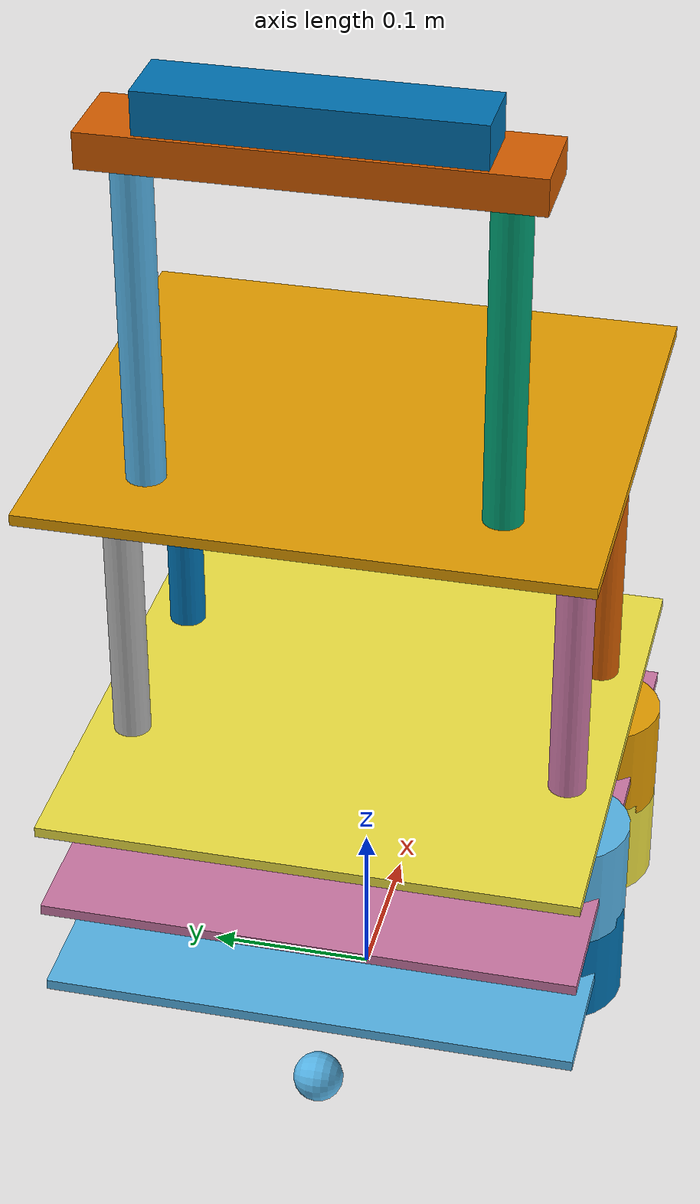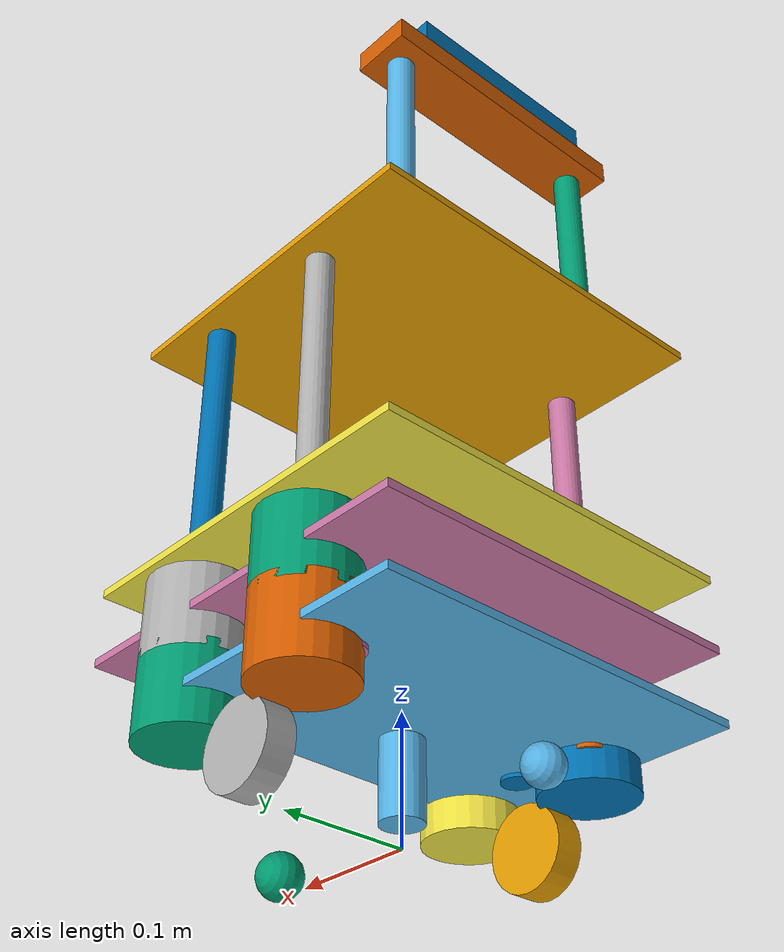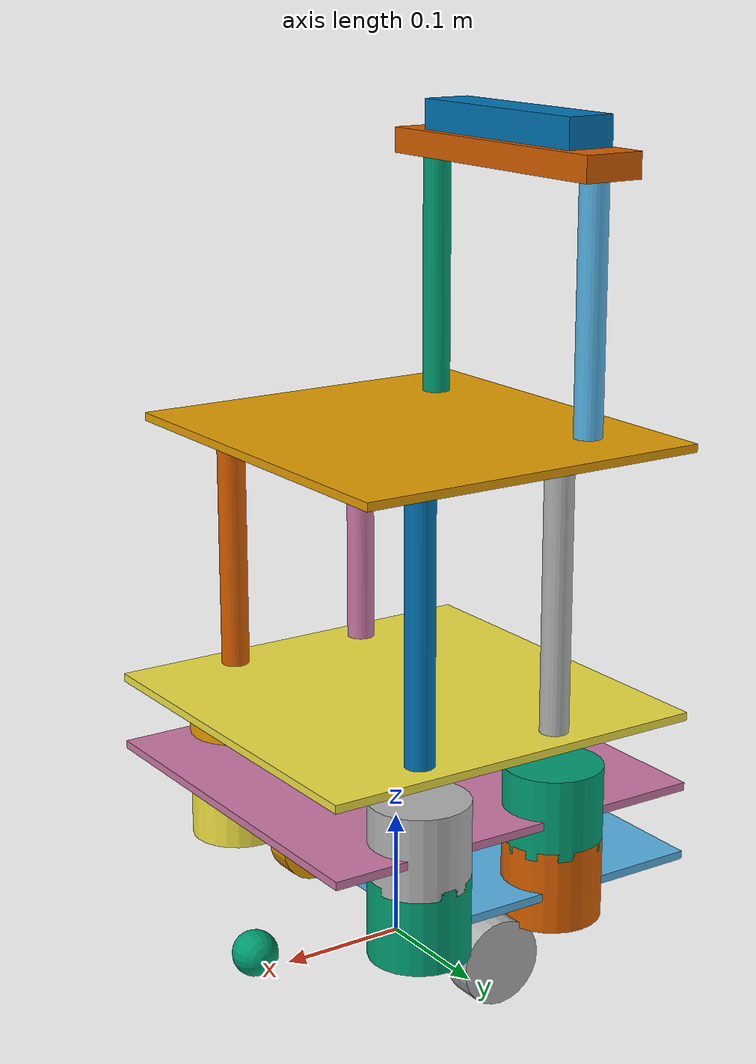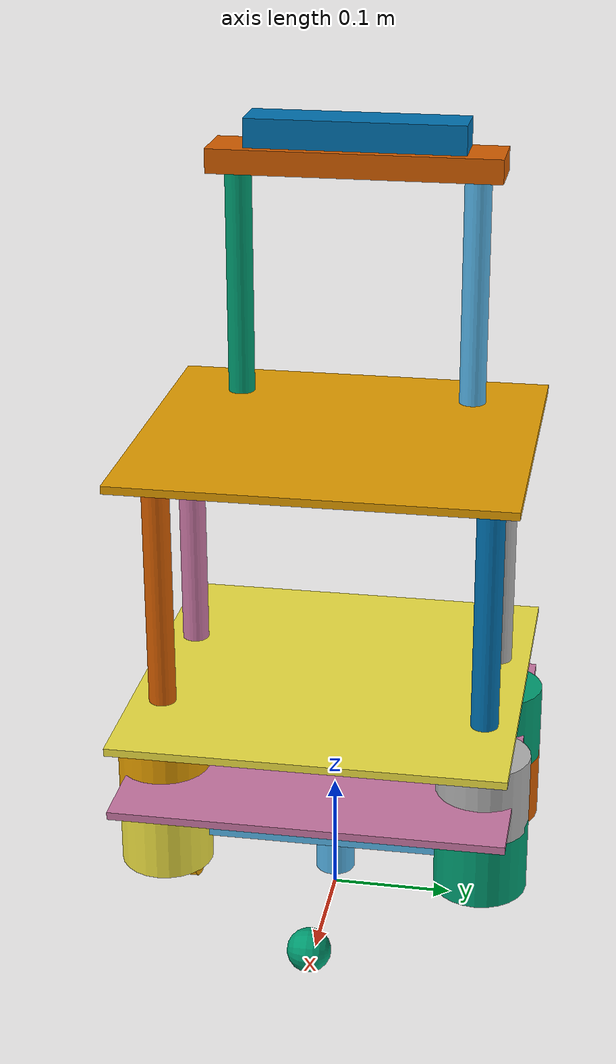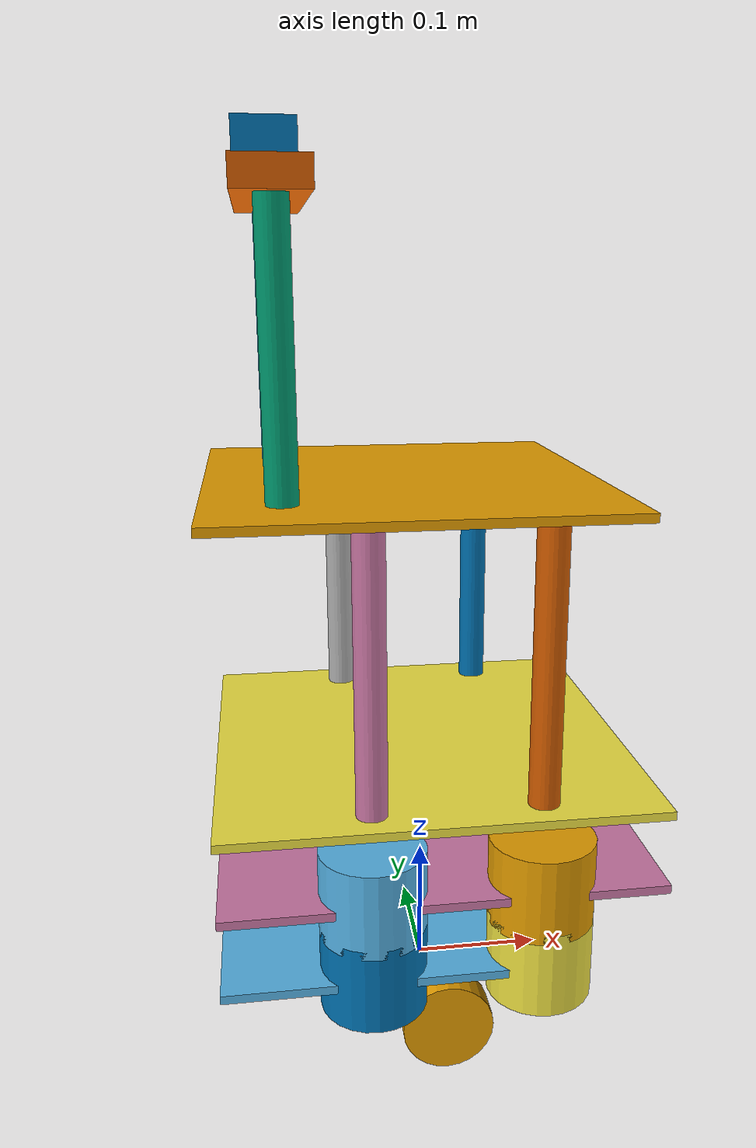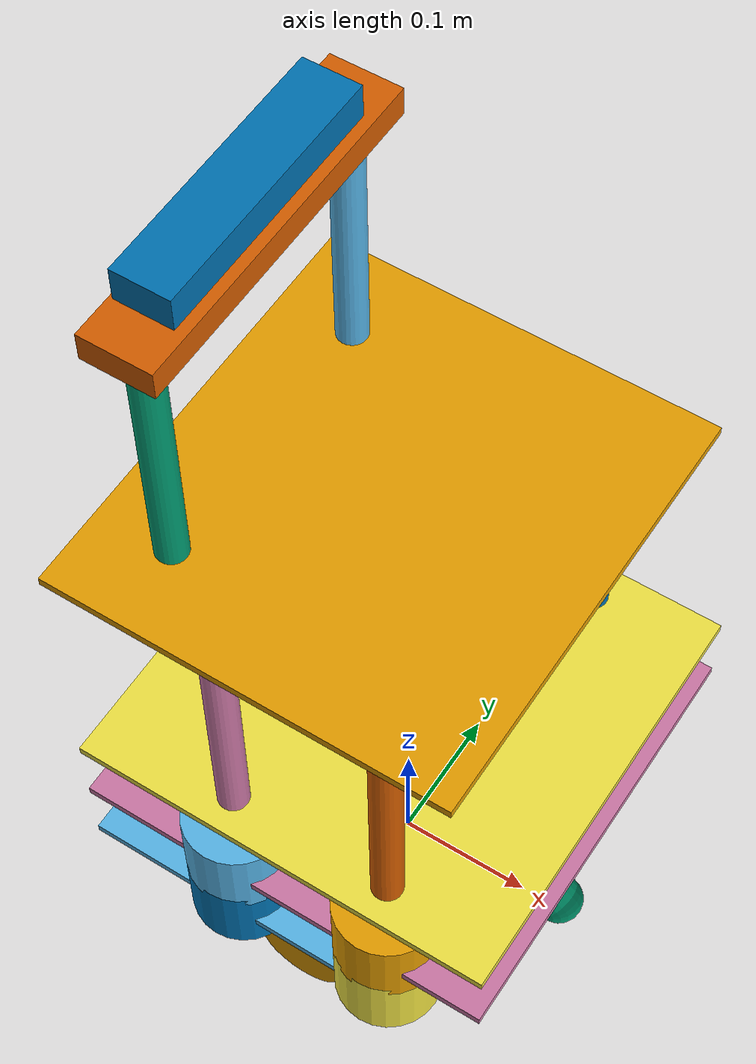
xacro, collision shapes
<?xml version="1.0"?>

<robot name="turtlebot"
    xmlns:sensor="http://playerstage.sourceforge.net/gazebo/xmlschema/#sensor"
    xmlns:controller="http://playerstage.sourceforge.net/gazebo/xmlschema/#controller"
    xmlns:interface="http://playerstage.sourceforge.net/gazebo/xmlschema/#interface">

    <!-- Included URDF Files -->
    <include filename="$(find turtlebot_xtion_top_description)/urdf/turtlebot.xacro" />

    <turtlebot />
</robot>

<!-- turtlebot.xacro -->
<robot>
  <include filename="$(find turtlebot_xtion_top_description)/urdf/turtlebot_hardware.xacro" />
  <include filename="$(find turtlebot_xtion_top_description)/urdf/gazebo.urdf.xacro"/>
  <include filename="$(find turtlebot_xtion_top_description)/urdf/turtlebot_calibration.xacro" />

  <material name="Green">
    <color rgba="0.0 0.8 0.0 1.0"/>
  </material>

  <property name="M_PI" value="3.14159"/>
  <property name="SCALE" value="0.0254"/>
  <property name="base_x" value="0.33" />
  <property name="base_y" value="0.33" />

  <macro name="turtlebot">
  <!-- base_footprint is a fictitious link(frame) that is on the ground right below base_link origin, navigation stack depends on this frame -->

  <link name="base_footprint">
    <inertial>
      <mass value="0.0001" />
      <origin xyz="0 0 0" />
      <inertia ixx="0.0001" ixy="0.0" ixz="0.0"
              iyy="0.0001" iyz="0.0"
              izz="0.0001" />
    </inertial>

    <visual>
      <origin xyz="0 0 0" rpy="0 0 0" />
      <geometry>
        <box size="0.001 0.001 0.001" />
      </geometry>
      <material name="Green" />
    </visual>

    <collision>
      <origin xyz="0 0 0.017" rpy="0 0 0" />
      <geometry>
       <box size="0.001 0.001 0.001" />
      </geometry>
    </collision>
  </link>

  <link name="base_link">
    <inertial>
      <mass value="2" />
      <origin xyz="0 0 0.0" />
      <inertia ixx="0.01" ixy="0.0" ixz="0.0"
        iyy="0.01" iyz="0.0" izz="0.5" />
    </inertial>

    <visual>
      <origin xyz=" 0 0 0.0308" rpy="0 0 0" />
      <geometry>
        <mesh filename="package://turtlebot_xtion_top_description/meshes/create_body.dae"/>
      </geometry>
    </visual>

    <collision>
      <origin xyz="0.0 0.0 0.0308" rpy="0 0 0" />
      <geometry>
        <cylinder length="0.0611632" radius="0.016495"/>
      </geometry>
    </collision>
  </link>

  <link name="wall_sensor_link">
    <inertial>
      <mass value="0.01" />
      <origin xyz="0 0 0"/>
      <inertia ixx="0.001" ixy="0.0" ixz="0.0"
        iyy="0.001" iyz="0.0" izz="0.001" />
    </inertial>
  </link>

  <link name="left_cliff_sensor_link">
    <inertial>
      <mass value="0.01" />
      <origin xyz="0 0 0"/>
      <inertia ixx="0.001" ixy="0.0" ixz="0.0"
        iyy="0.001" iyz="0.0" izz="0.001" />
    </inertial>
  </link>

  <link name="right_cliff_sensor_link">
    <inertial>
      <mass value="0.01" />
      <origin xyz="0 0 0"/>
      <inertia ixx="0.001" ixy="0.0" ixz="0.0"
        iyy="0.001" iyz="0.0" izz="0.001" />
    </inertial>
  </link>

  <link name="leftfront_cliff_sensor_link">
    <inertial>
      <mass value="0.01" />
      <origin xyz="0 0 0"/>
      <inertia ixx="1.0" ixy="0.0" ixz="0.0"
        iyy="0.01" iyz="0.0" izz="0.01" />
    </inertial>
  </link>

  <link name="rightfront_cliff_sensor_link">
    <inertial>
      <mass value="0.01" />
      <origin xyz="0 0 0"/>
      <inertia ixx="0.001" ixy="0.0" ixz="0.0"
        iyy="0.001" iyz="0.0" izz="0.001" />
    </inertial>
  </link>

  <joint name="base_footprint_joint" type="fixed">
    <origin xyz="0 0 0.017" rpy="0 0 0" />
    <parent link="base_footprint"/>
    <child link="base_link" />
  </joint>

  <joint name="base_wall_sensor_joint" type="fixed">
    <origin xyz="0.09 -0.120 0.042" rpy="0 0 -1.0" />
    <parent link="base_link"/>
    <child link="wall_sensor_link" />
  </joint>

  <joint name="base_left_cliff_sensor_joint" type="fixed">
    <origin xyz="0.07 0.14 0.01" rpy="0 1.57079 0" />
    <parent link="base_link"/>
    <child link="left_cliff_sensor_link" />
  </joint>

  <joint name="base_right_cliff_sensor_joint" type="fixed">
    <origin xyz="0.07 -0.14 0.01" rpy="0 1.57079 0" />
    <parent link="base_link"/>
    <child link="right_cliff_sensor_link" />
  </joint>

  <joint name="base_leftfront_cliff_sensor_joint" type="fixed">
    <origin xyz="0.15 0.04 0.01" rpy="0 1.57079 0" />
    <parent link="base_link"/>
    <child link="leftfront_cliff_sensor_link" />
  </joint>

  <joint name="base_rightfront_cliff_sensor_joint" type="fixed">
    <origin xyz="0.15 -0.04 0.01" rpy="0 1.57079 0" />
    <parent link="base_link"/>
    <child link="rightfront_cliff_sensor_link" />
  </joint>

  <link name="left_wheel_link">
    <inertial>
      <origin xyz="0 0 0"/>
      <mass value="0.01" />
      <inertia ixx="0.001" ixy="0.0" ixz="0.0"
        iyy="0.001" iyz="0.0" izz="0.001" />
    </inertial>

    <visual>
      <origin xyz="0 0 0" rpy="0 1.5707 1.5707" />
      <geometry>
        <cylinder radius="0.033" length = "0.023"/>
      </geometry>
    </visual>

    <collision>
      <origin xyz="0 0 0" rpy="0 1.5707 1.5707" />
      <geometry>
        <cylinder radius="0.033" length = "0.023"/>
      </geometry>
    </collision>
  </link>

  <joint name="left_wheel_joint" type="continuous">
    <origin xyz="0 0.13 0.015" rpy="0 0 0"/>
    <parent link="base_link"/>
    <child link="left_wheel_link"/>
    <axis xyz="0 1 0"/>
  </joint>

  <link name="right_wheel_link">
    <inertial>
      <origin xyz="0 0 0"/>
      <mass value="0.01" />
      <inertia ixx="0.001" ixy="0.0" ixz="0.0"
        iyy="0.001" iyz="0.0" izz="0.001" />
    </inertial>

    <visual>
      <origin xyz="0 0 0" rpy="0 1.5707 1.5707" />
      <geometry>
        <cylinder radius="0.033" length = "0.023"/>
      </geometry>
    </visual>

    <collision>
      <origin xyz="0 0 0" rpy="0 1.5707 1.5707" />
      <geometry>
        <cylinder radius="0.033" length = "0.023"/>
      </geometry>
    </collision>
  </link>

  <joint name="right_wheel_joint" type="continuous">
    <origin xyz="0 -0.13 0.015" rpy="0 0 0"/>
    <parent link="base_link"/>
    <child link="right_wheel_link"/>
    <axis xyz="0 1 0"/>
  </joint>

  <link name="rear_wheel_link">
    <inertial>
      <origin xyz="0 0 0"/>
      <mass value="0.001" />
      <inertia ixx="0.0001" ixy="0.0" ixz="0.0"
        iyy="0.0001" iyz="0.0" izz="0.0001" />
    </inertial>

    <visual>
      <origin xyz="0 0 0" rpy="0 1.5707 1.5707"/>
      <geometry>
        <sphere radius="0.015" />
      </geometry>
    </visual>

    <collision>
      <origin xyz="0 0 0" rpy="0 1.5707 1.5707" />
      <geometry>
        <sphere radius="0.015" />
      </geometry>
    </collision>
  </link>
  <!-- fixed because there's no transmission -->
  <joint name="rear_castor_joint" type="fixed">
    <origin xyz="-0.13 0 0.0" rpy="0 0 0"/>
    <parent link="base_link"/>
    <child link="rear_wheel_link"/>
    <axis xyz="0 1 0"/>
  </joint>

  <link name="front_wheel_link">
    <inertial>
      <origin xyz="0 0 0" />
      <mass value="0.01" />
      <inertia ixx="0.001" ixy="0.0" ixz="0.0"
        iyy="0.001" iyz="0.0" izz="0.001" />
    </inertial>

    <visual>
      <origin xyz="0 0 0" rpy="0 1.5707 1.5707"/>
      <geometry>
        <sphere radius="0.018" />
      </geometry>
    </visual>

    <collision>
      <origin xyz="0 0 0" rpy="0 1.5707 1.5707" />
      <geometry>
        <sphere radius="0.018" />
      </geometry>
    </collision>
  </link>

  <!-- fixed because there's no transmission -->
  <joint name="front_castor_joint" type="fixed">
    <origin xyz="0.13 0 0.0" rpy="0 0 0"/>
    <parent link="base_link"/>
    <child link="front_wheel_link"/>
    <axis xyz="0 1 0"/>
  </joint>

  <turtlebot_spacer parent="base_link" number="0" x_loc="-0.00254" y_loc="0.1114679" z_loc="0.062992"/>
  <turtlebot_spacer parent="base_link" number="1" x_loc="-0.00254" y_loc="-0.1114679" z_loc="0.062992"/>
  <turtlebot_spacer parent="base_link" number="2" x_loc="-0.07239" y_loc="-0.1114679" z_loc="0.062992"/>
  <turtlebot_spacer parent="base_link" number="3" x_loc="-0.07239" y_loc="0.1114679" z_loc="0.062992"/>

  <joint name="gyro_joint" type="fixed">
    <origin xyz="0 0 0.04" rpy="0 0 0" />
    <parent link="base_link" />
    <child link="gyro_link" />
  </joint>

  <link name="gyro_link">
    <visual>
      <geometry>
        <box size="0.02 0.035 0.002" />
      </geometry>
      <material name="Green" />
    </visual>
    <inertial>
      <mass value="0.001" />
      <origin xyz="0 0 0" />
      <inertia ixx="0.0001" ixy="0.0" ixz="0.0"
        iyy="0.0001" iyz="0.0"
        izz="0.0001" />
    </inertial>
  </link>

  <joint name="laser_joint" type="fixed">
    <origin xyz="-0.065 0 0.075" rpy="0 0 0" />
    <parent link="base_link" />
    <child link="laser" />
  </joint>

  <link name="laser">
    <visual>
      <geometry>
        <box size="0.02 0.035 0.002" />
      </geometry>
      <material name="Green" />
    </visual>
    <inertial>
      <mass value="0.001" />
      <origin xyz="0 0 0" />
      <inertia ixx="0.0001" ixy="0.0" ixz="0.0"
        iyy="0.0001" iyz="0.0"
        izz="0.0001" />
    </inertial>
  </link>

  <joint name="plate_0_joint" type="fixed">
    <origin xyz="-0.04334 0  0.06775704" rpy="0 0 0" />
    <parent link="base_link"/>
    <child link="plate_0_link" />
  </joint>

  <link name="plate_0_link">
    <inertial>
      <mass value="0.01" />
      <origin xyz="0 0 0" />
      <inertia ixx="0.01" ixy="0.0" ixz="0.0"
        iyy="0.01" iyz="0.0"
        izz="0.01" />
    </inertial>

    <visual>
      <origin xyz=" 0 0 0 " rpy="0 0 0" />
      <geometry>
        <mesh filename="package://turtlebot_xtion_top_description/meshes/plate_0_logo.dae"/>
      </geometry>
    </visual>

    <collision>
      <origin xyz="0.0 0.0 0.0" rpy="0 0 0" />
      <geometry>
        <box size="0.233502 0.314845 0.006401"/>
      </geometry>
    </collision>
  </link>

  <turtlebot_standoff_2in parent="base_link" number="0" x_loc="0.0676402" y_loc="0.1314196" z_loc="0.0709803"/>
  <turtlebot_standoff_2in parent="base_link" number="1" x_loc="0.0676402" y_loc="-0.1314196" z_loc="0.0709803"/>
  <turtlebot_standoff_2in parent="base_link" number="2" x_loc="-0.052832" y_loc="-0.1314196" z_loc="0.0709803"/>
  <turtlebot_standoff_2in parent="base_link" number="3" x_loc="-0.052832" y_loc="0.1314196" z_loc="0.0709803"/>

  <joint name="plate_1_joint" type="fixed">
    <origin xyz="0.04068 0 0.05715" rpy="0 0 0" />
    <parent link="plate_0_link"/>
    <child link="plate_1_link" />
  </joint>

  <link name="plate_1_link">
    <inertial>
      <mass value="0.1" />
      <origin xyz="0 0 0" />
      <inertia ixx="0.01" ixy="0.0" ixz="0.0"
        iyy="0.01" iyz="0.0"
        izz="0.01" />
    </inertial>

    <visual>
      <origin xyz=" 0 0 0 " rpy="0 0 0" />
      <geometry>
        <mesh filename="package://turtlebot_xtion_top_description/meshes/plate_1_logo.dae"/>
      </geometry>
    </visual>

    <collision>
      <origin xyz="0.0 0.0 0.0" rpy="0 0 0" />
      <geometry>
        <box size="0.314856 0.314856 0.006401"/>
      </geometry>
    </collision>
  </link>

  <turtlebot_standoff_2in parent="standoff_2in_0_link" number="4" x_loc="0" y_loc="0" z_loc="0.05715"/>
  <turtlebot_standoff_2in parent="standoff_2in_1_link" number="5" x_loc="0" y_loc="0" z_loc="0.05715"/>
  <turtlebot_standoff_2in parent="standoff_2in_2_link" number="6" x_loc="0" y_loc="0" z_loc="0.05715"/>
  <turtlebot_standoff_2in parent="standoff_2in_3_link" number="7" x_loc="0" y_loc="0" z_loc="0.05715"/>

  <joint name="plate_2_joint" type="fixed">
    <origin xyz="0 0 0.0572008" rpy="0 0 0" />
    <parent link="plate_1_link"/>
    <child link="plate_2_link" />
  </joint>

  <link name="plate_2_link">
    <inertial>
      <mass value="0.01" />
      <origin xyz="0 0 0" />
      <inertia ixx="0.001" ixy="0.0" ixz="0.0"
        iyy="0.001" iyz="0.0"
        izz="0.001" />
    </inertial>

    <visual>
      <origin xyz=" 0 0 0 " rpy="0 0 0" />
      <geometry>
        <mesh filename="package://turtlebot_xtion_top_description/meshes/plate_1_logo.dae"/>
      </geometry>
    </visual>

    <collision>
      <origin xyz="0.0 0.0 0.0" rpy="0 0 0" />
      <geometry>
        <box size="0.314856 0.314856 0.006401"/>
      </geometry>
    </collision>
  </link>

  <joint name="base_xtion_joint" type="fixed">
    <origin xyz="${turtlebot_calib_cam_x} ${turtlebot_calib_cam_y} ${turtlebot_calib_cam_z}"
            rpy="${turtlebot_calib_cam_rr} ${turtlebot_calib_cam_rp} ${turtlebot_calib_cam_ry}" />
    <parent link="${turtlebot_xtion_frame_name}" />
    <child link="xtion_link" />
  </joint>

  <link name="xtion_link">
    <inertial>
      <mass value="0.01" />
      <origin xyz="0 0 0" />
      <inertia ixx="0.001" ixy="0.0" ixz="0.0"
        iyy="0.001" iyz="0.0"
        izz="0.001" />
    </inertial>

    <visual>
      <origin xyz=" 0 0 0 " rpy="${M_PI/2.0} 0 ${M_PI/2.0}" />
      <geometry>
        <mesh filename="package://turtlebot_xtion_top_description/meshes/xtion/asus_xtion_pro_live.dae" scale="0.001 0.001 0.001"/>
      </geometry>
    </visual>

    <collision>
      <origin xyz="-0.01 0.0 0.0" rpy="0 0 0" />
      <geometry>
        <box size="0.04 0.18 0.03"/>
      </geometry>
    </collision>

  </link>

  <!-- platform for xtion -->

  <joint name="base_xtion_platform_joint" type="fixed">
    <origin xyz="-0.1024382 0.0 0.41275"
            rpy="0.0 0.0 0.0" />
    <parent link="plate_2_link" />
    <child link="xtion_platform" />
  </joint>

  <link name="xtion_platform">
    <inertial>
      <mass value="0.01" />
      <origin xyz="0 0 0" />
      <inertia ixx="0.001" ixy="0.0" ixz="0.0"
        iyy="0.001" iyz="0.0" izz="0.001" />
    </inertial>

    <visual>
      <origin xyz="0 0 0 " rpy="${M_PI/2.0} 0 ${M_PI/2.0}" />
      <geometry>
        <mesh filename="package://turtlebot_xtion_top_description/meshes/xtion/xtion_base.dae" scale="0.001 0.001 0.001"/>
      </geometry>

    </visual>

    <collision>
      <origin xyz="0.0 0.0 0.0" rpy="0 0 0" />
      <geometry>
        <box size="0.05 0.24 0.02"/>
      </geometry>
    </collision>

  </link>

  <!-- left clip for xtion -->

  <joint name="base_xtion_left_clip_joint" type="fixed">
    <origin xyz="0.017 -0.0745 0.00635"
            rpy="0.0 0.0 0.0" />
    <parent link="xtion_platform" />
    <child link="xtion_left_clip" />
  </joint>

  <link name="xtion_left_clip">
    <inertial>
      <mass value="0.01" />
      <origin xyz="0 0 0" />
      <inertia ixx="0.001" ixy="0.0" ixz="0.0"
        iyy="0.001" iyz="0.0" izz="0.001" />
    </inertial>
    <visual>
      <origin xyz="0 0 0 " rpy="${M_PI/2.0} 0 ${M_PI/2.0}" />
      <geometry>
        <mesh filename="package://turtlebot_xtion_top_description/meshes/xtion/xtion_bracket_left.dae" scale="0.001 0.001 0.001"/>
      </geometry>
    </visual>
  </link>

  <!-- right clip for xtion -->

  <joint name="base_xtion_right_clip_joint" type="fixed">
    <origin xyz="0.017 0.0809 0.00635"
            rpy="0.0 0.0 0.0" />
    <parent link="xtion_platform" />
    <child link="xtion_right_clip" />
  </joint>

  <link name="xtion_right_clip">
    <inertial>
      <mass value="0.01" />
      <origin xyz="0 0 0" />
      <inertia ixx="0.001" ixy="0.0" ixz="0.0"
        iyy="0.001" iyz="0.0" izz="0.001" />
    </inertial>
    <visual>
      <origin xyz="0 0 0 " rpy="${M_PI/2.0} 0 ${M_PI/-2.0}" />
      <geometry>
        <mesh filename="package://turtlebot_xtion_top_description/meshes/xtion/xtion_bracket_right.dae" scale="0.001 0.001 0.001"/>
      </geometry>
      <color rgba="0 225 0 1.0"/>
    </visual>
  </link>

  <joint name="xtion_depth_joint" type="fixed">
    <origin xyz="0 0.018 0" rpy="0 0 0" />
    <parent link="xtion_link" />
    <child link="xtion_depth_frame" />
  </joint>

  <link name="xtion_depth_frame">
    <inertial>
      <mass value="0.01" />
      <origin xyz="0 0 0" />
      <inertia ixx="0.001" ixy="0.0" ixz="0.0"
        iyy="0.001" iyz="0.0"
        izz="0.001" />
    </inertial>
  </link>

  <joint name="xtion_depth_optical_joint" type="fixed">
    <origin xyz="0 0 0" rpy="${-M_PI/2} 0 ${-M_PI/2}" />
    <parent link="xtion_depth_frame" />
    <child link="xtion_depth_optical_frame" />
  </joint>

  <link name="xtion_depth_optical_frame">
    <inertial>
      <mass value="0.001" />
      <origin xyz="0 0 0" />
      <inertia ixx="0.0001" ixy="0.0" ixz="0.0"
        iyy="0.0001" iyz="0.0"
        izz="0.0001" />
    </inertial>
  </link>

  <joint name="xtion_rgb_joint" type="fixed">
    <origin xyz="0 -0.005 0" rpy="0 0 0" />
    <parent link="xtion_link" />
    <child link="xtion_rgb_frame" />
  </joint>

  <link name="xtion_rgb_frame">
    <inertial>
      <mass value="0.001" />
      <origin xyz="0 0 0" />
      <inertia ixx="0.0001" ixy="0.0" ixz="0.0"
        iyy="0.0001" iyz="0.0"
        izz="0.0001" />
    </inertial>
  </link>

  <joint name="xtion_rgb_optical_joint" type="fixed">
    <origin xyz="0 0 0" rpy="${-M_PI/2} 0 ${-M_PI/2}" />
    <parent link="xtion_rgb_frame" />
    <child link="xtion_rgb_optical_frame" />
  </joint>

  <link name="xtion_rgb_optical_frame">
    <inertial>
      <mass value="0.001" />
      <origin xyz="0 0 0" />
      <inertia ixx="0.0001" ixy="0.0" ixz="0.0"
        iyy="0.0001" iyz="0.0"
        izz="0.0001" />
    </inertial>
  </link>

  <turtlebot_standoff_8in parent="standoff_2in_4_link" number="0" x_loc="0" y_loc="0" z_loc="0.05715"/>
  <turtlebot_standoff_8in parent="standoff_2in_5_link" number="1" x_loc="0" y_loc="0" z_loc="0.05715"/>
  <turtlebot_standoff_8in parent="standoff_2in_6_link" number="2" x_loc="0" y_loc="0" z_loc="0.05715"/>
  <turtlebot_standoff_8in parent="standoff_2in_7_link" number="3" x_loc="0" y_loc="0" z_loc="0.05715"/>

  <joint name="plate_3_joint" type="fixed">
    <origin xyz="-0.01316 0 0.20955" rpy="0 0 0" />
    <parent link="plate_2_link"/>
    <child link="plate_3_link" />
  </joint>

  <link name="plate_3_link">
    <inertial>
      <mass value="0.01" />
      <origin xyz="0 0 0" />
      <inertia ixx="0.0001" ixy="0.0" ixz="0.0"
        iyy="0.0001" iyz="0.0"
        izz="0.0001" />
    </inertial>

    <visual>
      <origin xyz=" 0 0 0 " rpy="0 0 0" />`
      <geometry>
        <mesh filename="package://turtlebot_xtion_top_description/meshes/plate_2_logo.dae"/>
      </geometry>
    </visual>

    <collision>
      <origin xyz="0.0 0.0 0.0" rpy="0 0 0" />
      <geometry>
        <box size="0.288 0.315 0.006401"/>
      </geometry>
    </collision>
  </link>

  <!-- xtion 8'' standoffs -->

  <turtlebot_standoff_8in parent="plate_2_link" number="4" x_loc="-0.1024382" y_loc=" 0.098" z_loc="0.209425"/>
  <turtlebot_standoff_8in parent="plate_2_link" number="5" x_loc="-0.1024382" y_loc="-0.098" z_loc="0.209425"/>

  </macro>
</robot>

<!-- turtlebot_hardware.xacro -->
<robot>
  <property name="M_PI" value="3.14159"/>
  <property name="M_SCALE" value="0.001"/>

  <macro name="turtlebot_spacer" params="parent number x_loc y_loc z_loc">
    <joint name="spacer_${number}_joint" type="fixed">
      <origin xyz="${x_loc} ${y_loc} ${z_loc}" rpy="0 0 0" />
      <parent link="${parent}"/>
      <child link="spacer_${number}_link" />
    </joint>

    <link name="spacer_${number}_link">
      <inertial>
        <mass value="0.001" />
        <origin xyz="0 0 0" />
        <inertia ixx="0.0001" ixy="0.0" ixz="0.0"
          iyy="0.0001" iyz="0.0"
          izz="0.0001" />
      </inertial>

      <visual>
        <origin xyz=" 0 0 0 " rpy="0 0 0" />
        <geometry>
          <mesh filename="package://turtlebot_xtion_top_description/meshes/68-02403-125_Spacer.dae" scale="${M_SCALE} ${M_SCALE} ${M_SCALE}"/>
        </geometry>
      </visual>

      <collision>
        <origin xyz="0.0 0.0 0.0" rpy="0 0 0" />
        <geometry>
          <cylinder length="0.003175" radius=".0127"/>
        </geometry>
      </collision>
    </link>
  </macro>

  <macro name="turtlebot_standoff_1in" params="parent number x_loc y_loc z_loc">
    <joint name="standoff_1in_${number}_joint" type="fixed">
      <origin xyz="${x_loc} ${y_loc} ${z_loc}" rpy="0 0 0" />
      <parent link="${parent}"/>
      <child link="standoff_1in_${number}_link" />
    </joint>

    <link name="standoff_1in_${number}_link">
      <inertial>
        <mass value="0.001" />
        <origin xyz="0 0 0" />
        <inertia ixx="0.0001" ixy="0.0" ixz="0.0"
          iyy="0.0001" iyz="0.0"
          izz="0.0001" />
      </inertial>

      <visual>
        <origin xyz=" 0 0 0 " rpy="0 0 0" />
        <geometry>
          <mesh filename="package://turtlebot_xtion_top_description/meshes/68-04552-1000-RA_Turtlebot_M-F_Standoff.dae" scale="${M_SCALE} ${M_SCALE} ${M_SCALE}"/>
        </geometry>
      </visual>

      <collision>
        <origin xyz="0.0 0.0 0.0" rpy="0 0 0" />
        <geometry>
          <cylinder length="0.0381" radius="0.011113"/>
        </geometry>
      </collision>
    </link>
  </macro>

  <macro name="turtlebot_standoff_2in" params="parent number x_loc y_loc z_loc">
    <joint name="standoff_2in_${number}_joint" type="fixed">
      <origin xyz="${x_loc} ${y_loc} ${z_loc}" rpy="0 0 0" />
      <parent link="${parent}"/>
      <child link="standoff_2in_${number}_link" />
    </joint>

    <link name="standoff_2in_${number}_link">
      <inertial>
        <mass value="0.001" />
        <origin xyz="0 0 0" />
        <inertia ixx="0.0001" ixy="0.0" ixz="0.0"
          iyy="0.0001" iyz="0.0"
          izz="0.0001" />
      </inertial>

      <visual>
        <origin xyz=" 0 0 0 " rpy="0 0 0" />
        <geometry>
          <mesh filename="package://turtlebot_xtion_top_description/meshes/68-04552-2000-RA_Turtlebot_M-F_Standoff.dae" scale="${M_SCALE} ${M_SCALE} ${M_SCALE}"/>
        </geometry>
      </visual>

      <collision>
        <origin xyz="0.0 0.0 0.0" rpy="0 0 0" />
        <geometry>
          <cylinder length="0.0635" radius="0.0381"/>
        </geometry>
      </collision>
    </link>
  </macro>

  <macro name="turtlebot_standoff_8in" params="parent number x_loc y_loc z_loc">
    <joint name="standoff_8in_${number}_joint" type="fixed">
      <origin xyz="${x_loc} ${y_loc} ${z_loc}" rpy="0 0 0" />
      <parent link="${parent}"/>
      <child link="standoff_8in_${number}_link" />
    </joint>

    <link name="standoff_8in_${number}_link">
      <inertial>
        <mass value="0.001" />
        <origin xyz="0 0 0" />
        <inertia ixx="0.0001" ixy="0.0" ixz="0.0"
          iyy="0.0001" iyz="0.0"
          izz="0.0001" />
      </inertial>

      <visual>
        <origin xyz=" 0 0 0 " rpy="0 0 0" />
        <geometry>
          <mesh filename="package://turtlebot_xtion_top_description/meshes/68-02421-8000-RA_Turtlebot_F-F_Standoff.dae" scale="${M_SCALE} ${M_SCALE} ${M_SCALE}"/>
        </geometry>
      </visual>

      <collision>
        <origin xyz="0.0 0.0 0.1016" rpy="0 0 0" />
        <geometry>
          <cylinder length="0.2032" radius="0.011113"/>
        </geometry>
      </collision>
    </link>
  </macro>

  <macro name="turtlebot_standoff_kinect" params="parent number x_loc y_loc z_loc">
    <joint name="standoff_kinect_${number}_joint" type="fixed">
      <origin xyz="${x_loc} ${y_loc} ${z_loc}" rpy="0 0 0" />
      <parent link="${parent}"/>
      <child link="standoff_kinect_${number}_link" />
    </joint>

    <link name="standoff_kinect_${number}_link">
      <inertial>
        <mass value="0.001" />
        <origin xyz="0 0 0" />
        <inertia ixx="0.0001" ixy="0.0" ixz="0.0"
          iyy="0.0001" iyz="0.0"
          izz="0.0001" />
      </inertial>

      <visual>
        <origin xyz=" 0 0 0 " rpy="0 0 0" />
        <geometry>
          <mesh filename="package://turtlebot_xtion_top_description/meshes/68-04556-RA_Kinect_Standoff_Assy.3ds" scale="${M_SCALE} ${M_SCALE} ${M_SCALE}"/>
        </geometry>
      </visual>

      <collision>
        <origin xyz="0.0 0.0 0.0" rpy="0 0 0" />
        <geometry>
          <cylinder length="0.008585" radius="0.001111"/>
        </geometry>
      </collision>
    </link>
  </macro>

</robot>

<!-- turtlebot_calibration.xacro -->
<robot>

  <property name="turtlebot_calib_cam_x" value="-0.095" />
  <property name="turtlebot_calib_cam_y" value="0.00" />
  <property name="turtlebot_calib_cam_z" value="0.4315" />
  <property name="turtlebot_calib_cam_rr" value="0" />
  <property name="turtlebot_calib_cam_rp" value="0" />
  <property name="turtlebot_calib_cam_ry" value="0" />
  <property name="turtlebot_xtion_frame_name" value="plate_2_link" />

</robot>
